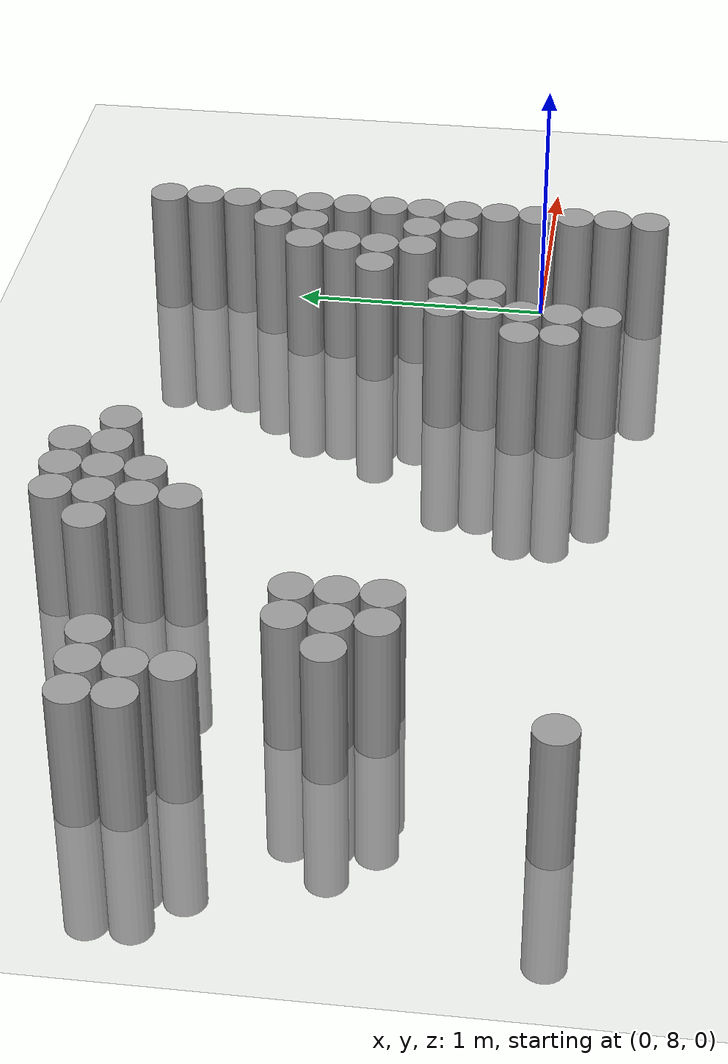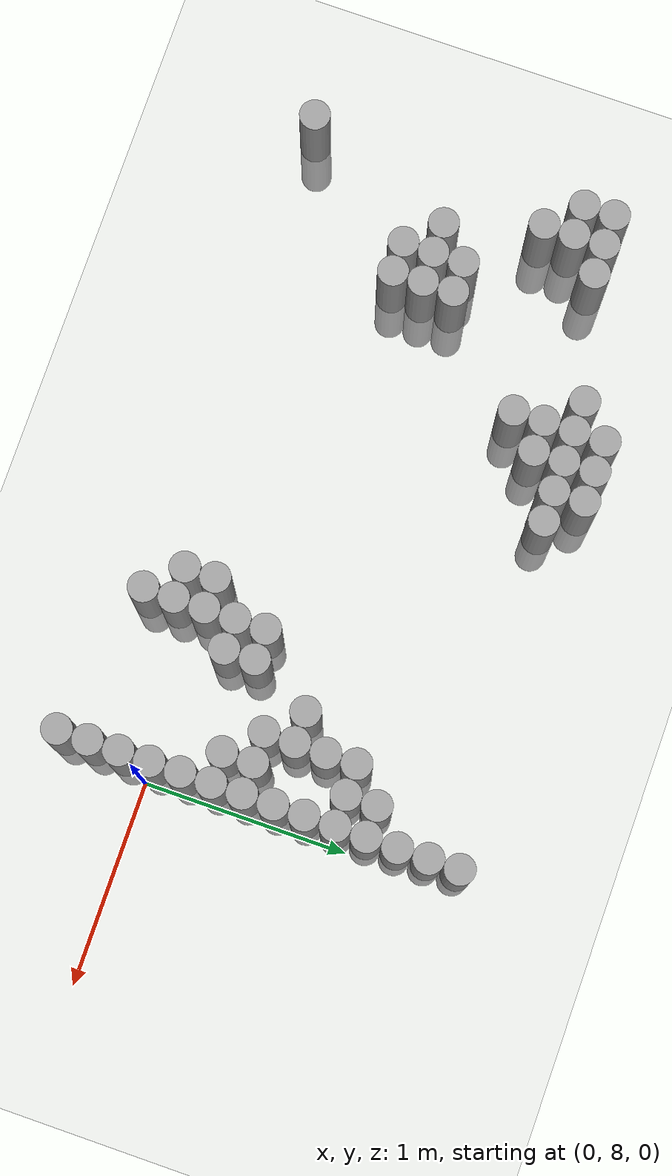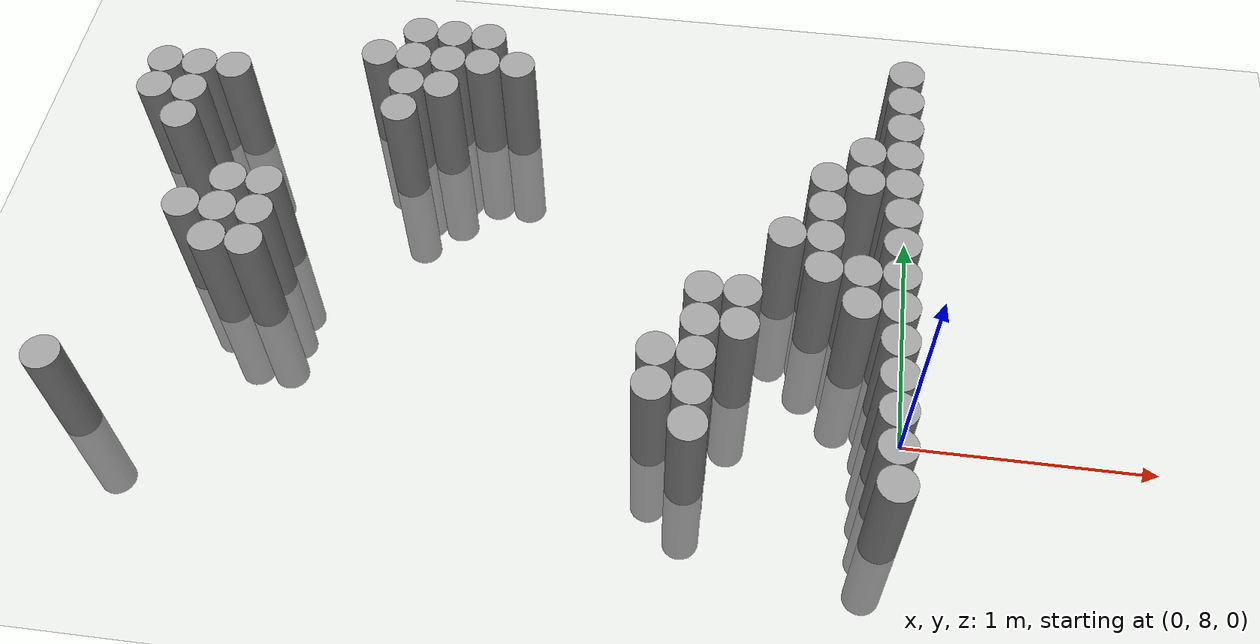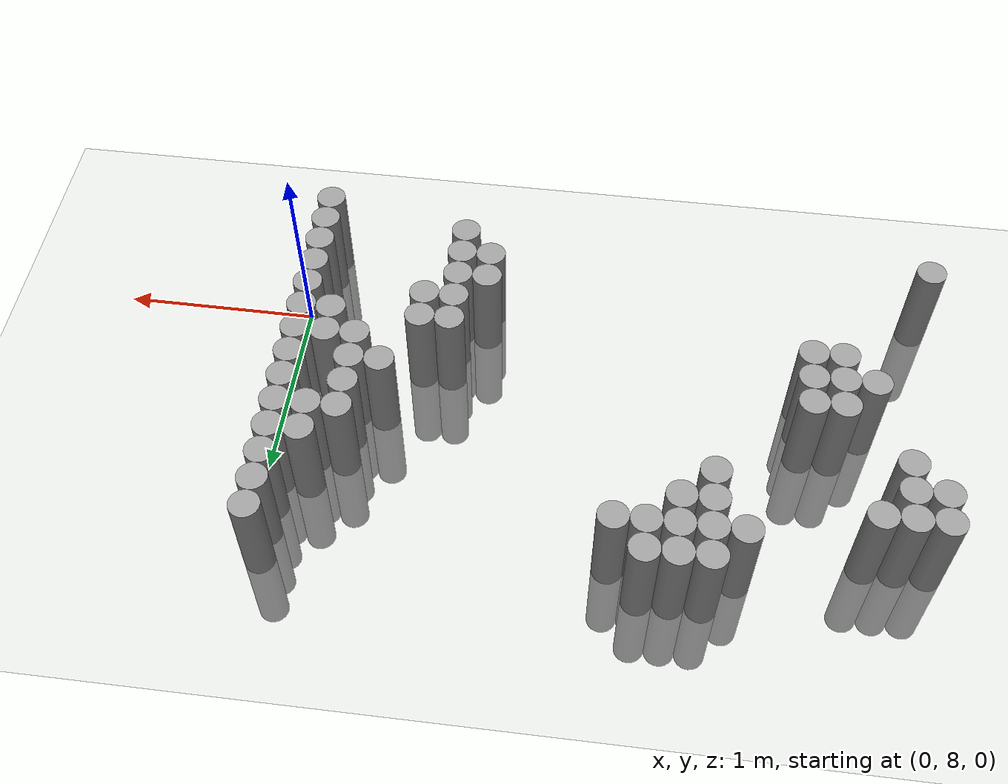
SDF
<sdf version="1.6">
 <world name="default">
  <model name="ground_plane">
   <static>1</static>
   <static>1</static>
   <link name="link">
    <collision name="collision">
     <geometry><plane><normal>0 0 1</normal><size>100 100</size></plane></geometry>
     <surface><friction><ode><mu>100</mu><mu2>50</mu2></ode></friction></surface>
    </collision>
    <visual name="visual">
     <cast_shadows>0</cast_shadows>
     <geometry><plane><normal>0 0 1</normal><size>100 100</size></plane></geometry>
     <material>
      <script><uri>file://media/materials/scripts/gazebo.material</uri><name>Gazebo/Grey</name></script>
     </material>
    </visual>
   </link>
  </model>
  <model name="unit_cylinder_165">
   <static>1</static>
   <pose>-3.225000 7.725000 0.000000 0.000000 0.000000 0.000000</pose>
   <link name="link">
    <inertial>
     <mass>1</mass>
     <inertia><ixx>0.145833</ixx><ixy>0</ixy><ixz>0</ixz><iyy>0.145833</iyy><iyz>0</iyz><izz>0.125</izz></inertia>
    </inertial>
    <collision name="collision">
     <geometry><cylinder><radius>0.075000</radius><length>1</length></cylinder></geometry>
    </collision>
    <visual name="visual">
     <geometry><cylinder><radius>0.075000</radius><length>1</length></cylinder></geometry>
     <material>
      <script><name>Gazebo/Grey</name><uri>file://media/materials/scripts/gazebo.material</uri></script>
     </material>
    </visual>
   </link>
  </model>
  <model name="unit_cylinder_166">
   <static>1</static>
   <pose>-3.225000 9.075000 0.000000 0.000000 0.000000 0.000000</pose>
   <link name="link">
    <inertial>
     <mass>1</mass>
     <inertia><ixx>0.145833</ixx><ixy>0</ixy><ixz>0</ixz><iyy>0.145833</iyy><iyz>0</iyz><izz>0.125</izz></inertia>
    </inertial>
    <collision name="collision">
     <geometry><cylinder><radius>0.075000</radius><length>1</length></cylinder></geometry>
    </collision>
    <visual name="visual">
     <geometry><cylinder><radius>0.075000</radius><length>1</length></cylinder></geometry>
     <material>
      <script><name>Gazebo/Grey</name><uri>file://media/materials/scripts/gazebo.material</uri></script>
     </material>
    </visual>
   </link>
  </model>
  <model name="unit_cylinder_167">
   <static>1</static>
   <pose>-3.225000 9.225000 0.000000 0.000000 0.000000 0.000000</pose>
   <link name="link">
    <inertial>
     <mass>1</mass>
     <inertia><ixx>0.145833</ixx><ixy>0</ixy><ixz>0</ixz><iyy>0.145833</iyy><iyz>0</iyz><izz>0.125</izz></inertia>
    </inertial>
    <collision name="collision">
     <geometry><cylinder><radius>0.075000</radius><length>1</length></cylinder></geometry>
    </collision>
    <visual name="visual">
     <geometry><cylinder><radius>0.075000</radius><length>1</length></cylinder></geometry>
     <material>
      <script><name>Gazebo/Grey</name><uri>file://media/materials/scripts/gazebo.material</uri></script>
     </material>
    </visual>
   </link>
  </model>
  <model name="unit_cylinder_170">
   <static>1</static>
   <pose>-3.075000 8.925000 0.000000 0.000000 0.000000 0.000000</pose>
   <link name="link">
    <inertial>
     <mass>1</mass>
     <inertia><ixx>0.145833</ixx><ixy>0</ixy><ixz>0</ixz><iyy>0.145833</iyy><iyz>0</iyz><izz>0.125</izz></inertia>
    </inertial>
    <collision name="collision">
     <geometry><cylinder><radius>0.075000</radius><length>1</length></cylinder></geometry>
    </collision>
    <visual name="visual">
     <geometry><cylinder><radius>0.075000</radius><length>1</length></cylinder></geometry>
     <material>
      <script><name>Gazebo/Grey</name><uri>file://media/materials/scripts/gazebo.material</uri></script>
     </material>
    </visual>
   </link>
  </model>
  <model name="unit_cylinder_171">
   <static>1</static>
   <pose>-3.075000 9.075000 0.000000 0.000000 0.000000 0.000000</pose>
   <link name="link">
    <inertial>
     <mass>1</mass>
     <inertia><ixx>0.145833</ixx><ixy>0</ixy><ixz>0</ixz><iyy>0.145833</iyy><iyz>0</iyz><izz>0.125</izz></inertia>
    </inertial>
    <collision name="collision">
     <geometry><cylinder><radius>0.075000</radius><length>1</length></cylinder></geometry>
    </collision>
    <visual name="visual">
     <geometry><cylinder><radius>0.075000</radius><length>1</length></cylinder></geometry>
     <material>
      <script><name>Gazebo/Grey</name><uri>file://media/materials/scripts/gazebo.material</uri></script>
     </material>
    </visual>
   </link>
  </model>
  <model name="unit_cylinder_172">
   <static>1</static>
   <pose>-3.075000 9.225000 0.000000 0.000000 0.000000 0.000000</pose>
   <link name="link">
    <inertial>
     <mass>1</mass>
     <inertia><ixx>0.145833</ixx><ixy>0</ixy><ixz>0</ixz><iyy>0.145833</iyy><iyz>0</iyz><izz>0.125</izz></inertia>
    </inertial>
    <collision name="collision">
     <geometry><cylinder><radius>0.075000</radius><length>1</length></cylinder></geometry>
    </collision>
    <visual name="visual">
     <geometry><cylinder><radius>0.075000</radius><length>1</length></cylinder></geometry>
     <material>
      <script><name>Gazebo/Grey</name><uri>file://media/materials/scripts/gazebo.material</uri></script>
     </material>
    </visual>
   </link>
  </model>
  <model name="unit_cylinder_176">
   <static>1</static>
   <pose>-2.925000 8.475000 0.000000 0.000000 0.000000 0.000000</pose>
   <link name="link">
    <inertial>
     <mass>1</mass>
     <inertia><ixx>0.145833</ixx><ixy>0</ixy><ixz>0</ixz><iyy>0.145833</iyy><iyz>0</iyz><izz>0.125</izz></inertia>
    </inertial>
    <collision name="collision">
     <geometry><cylinder><radius>0.075000</radius><length>1</length></cylinder></geometry>
    </collision>
    <visual name="visual">
     <geometry><cylinder><radius>0.075000</radius><length>1</length></cylinder></geometry>
     <material>
      <script><name>Gazebo/Grey</name><uri>file://media/materials/scripts/gazebo.material</uri></script>
     </material>
    </visual>
   </link>
  </model>
  <model name="unit_cylinder_177">
   <static>1</static>
   <pose>-2.925000 9.225000 0.000000 0.000000 0.000000 0.000000</pose>
   <link name="link">
    <inertial>
     <mass>1</mass>
     <inertia><ixx>0.145833</ixx><ixy>0</ixy><ixz>0</ixz><iyy>0.145833</iyy><iyz>0</iyz><izz>0.125</izz></inertia>
    </inertial>
    <collision name="collision">
     <geometry><cylinder><radius>0.075000</radius><length>1</length></cylinder></geometry>
    </collision>
    <visual name="visual">
     <geometry><cylinder><radius>0.075000</radius><length>1</length></cylinder></geometry>
     <material>
      <script><name>Gazebo/Grey</name><uri>file://media/materials/scripts/gazebo.material</uri></script>
     </material>
    </visual>
   </link>
  </model>
  <model name="unit_cylinder_183">
   <static>1</static>
   <pose>-2.775000 8.325000 0.000000 0.000000 0.000000 0.000000</pose>
   <link name="link">
    <inertial>
     <mass>1</mass>
     <inertia><ixx>0.145833</ixx><ixy>0</ixy><ixz>0</ixz><iyy>0.145833</iyy><iyz>0</iyz><izz>0.125</izz></inertia>
    </inertial>
    <collision name="collision">
     <geometry><cylinder><radius>0.075000</radius><length>1</length></cylinder></geometry>
    </collision>
    <visual name="visual">
     <geometry><cylinder><radius>0.075000</radius><length>1</length></cylinder></geometry>
     <material>
      <script><name>Gazebo/Grey</name><uri>file://media/materials/scripts/gazebo.material</uri></script>
     </material>
    </visual>
   </link>
  </model>
  <model name="unit_cylinder_184">
   <static>1</static>
   <pose>-2.775000 8.475000 0.000000 0.000000 0.000000 0.000000</pose>
   <link name="link">
    <inertial>
     <mass>1</mass>
     <inertia><ixx>0.145833</ixx><ixy>0</ixy><ixz>0</ixz><iyy>0.145833</iyy><iyz>0</iyz><izz>0.125</izz></inertia>
    </inertial>
    <collision name="collision">
     <geometry><cylinder><radius>0.075000</radius><length>1</length></cylinder></geometry>
    </collision>
    <visual name="visual">
     <geometry><cylinder><radius>0.075000</radius><length>1</length></cylinder></geometry>
     <material>
      <script><name>Gazebo/Grey</name><uri>file://media/materials/scripts/gazebo.material</uri></script>
     </material>
    </visual>
   </link>
  </model>
  <model name="unit_cylinder_185">
   <static>1</static>
   <pose>-2.775000 8.625000 0.000000 0.000000 0.000000 0.000000</pose>
   <link name="link">
    <inertial>
     <mass>1</mass>
     <inertia><ixx>0.145833</ixx><ixy>0</ixy><ixz>0</ixz><iyy>0.145833</iyy><iyz>0</iyz><izz>0.125</izz></inertia>
    </inertial>
    <collision name="collision">
     <geometry><cylinder><radius>0.075000</radius><length>1</length></cylinder></geometry>
    </collision>
    <visual name="visual">
     <geometry><cylinder><radius>0.075000</radius><length>1</length></cylinder></geometry>
     <material>
      <script><name>Gazebo/Grey</name><uri>file://media/materials/scripts/gazebo.material</uri></script>
     </material>
    </visual>
   </link>
  </model>
  <model name="unit_cylinder_191">
   <static>1</static>
   <pose>-2.625000 8.325000 0.000000 0.000000 0.000000 0.000000</pose>
   <link name="link">
    <inertial>
     <mass>1</mass>
     <inertia><ixx>0.145833</ixx><ixy>0</ixy><ixz>0</ixz><iyy>0.145833</iyy><iyz>0</iyz><izz>0.125</izz></inertia>
    </inertial>
    <collision name="collision">
     <geometry><cylinder><radius>0.075000</radius><length>1</length></cylinder></geometry>
    </collision>
    <visual name="visual">
     <geometry><cylinder><radius>0.075000</radius><length>1</length></cylinder></geometry>
     <material>
      <script><name>Gazebo/Grey</name><uri>file://media/materials/scripts/gazebo.material</uri></script>
     </material>
    </visual>
   </link>
  </model>
  <model name="unit_cylinder_192">
   <static>1</static>
   <pose>-2.625000 8.475000 0.000000 0.000000 0.000000 0.000000</pose>
   <link name="link">
    <inertial>
     <mass>1</mass>
     <inertia><ixx>0.145833</ixx><ixy>0</ixy><ixz>0</ixz><iyy>0.145833</iyy><iyz>0</iyz><izz>0.125</izz></inertia>
    </inertial>
    <collision name="collision">
     <geometry><cylinder><radius>0.075000</radius><length>1</length></cylinder></geometry>
    </collision>
    <visual name="visual">
     <geometry><cylinder><radius>0.075000</radius><length>1</length></cylinder></geometry>
     <material>
      <script><name>Gazebo/Grey</name><uri>file://media/materials/scripts/gazebo.material</uri></script>
     </material>
    </visual>
   </link>
  </model>
  <model name="unit_cylinder_193">
   <static>1</static>
   <pose>-2.625000 8.625000 0.000000 0.000000 0.000000 0.000000</pose>
   <link name="link">
    <inertial>
     <mass>1</mass>
     <inertia><ixx>0.145833</ixx><ixy>0</ixy><ixz>0</ixz><iyy>0.145833</iyy><iyz>0</iyz><izz>0.125</izz></inertia>
    </inertial>
    <collision name="collision">
     <geometry><cylinder><radius>0.075000</radius><length>1</length></cylinder></geometry>
    </collision>
    <visual name="visual">
     <geometry><cylinder><radius>0.075000</radius><length>1</length></cylinder></geometry>
     <material>
      <script><name>Gazebo/Grey</name><uri>file://media/materials/scripts/gazebo.material</uri></script>
     </material>
    </visual>
   </link>
  </model>
  <model name="unit_cylinder_197">
   <static>1</static>
   <pose>-2.325000 9.375000 0.000000 0.000000 0.000000 0.000000</pose>
   <link name="link">
    <inertial>
     <mass>1</mass>
     <inertia><ixx>0.145833</ixx><ixy>0</ixy><ixz>0</ixz><iyy>0.145833</iyy><iyz>0</iyz><izz>0.125</izz></inertia>
    </inertial>
    <collision name="collision">
     <geometry><cylinder><radius>0.075000</radius><length>1</length></cylinder></geometry>
    </collision>
    <visual name="visual">
     <geometry><cylinder><radius>0.075000</radius><length>1</length></cylinder></geometry>
     <material>
      <script><name>Gazebo/Grey</name><uri>file://media/materials/scripts/gazebo.material</uri></script>
     </material>
    </visual>
   </link>
  </model>
  <model name="unit_cylinder_200">
   <static>1</static>
   <pose>-2.175000 9.075000 0.000000 0.000000 0.000000 0.000000</pose>
   <link name="link">
    <inertial>
     <mass>1</mass>
     <inertia><ixx>0.145833</ixx><ixy>0</ixy><ixz>0</ixz><iyy>0.145833</iyy><iyz>0</iyz><izz>0.125</izz></inertia>
    </inertial>
    <collision name="collision">
     <geometry><cylinder><radius>0.075000</radius><length>1</length></cylinder></geometry>
    </collision>
    <visual name="visual">
     <geometry><cylinder><radius>0.075000</radius><length>1</length></cylinder></geometry>
     <material>
      <script><name>Gazebo/Grey</name><uri>file://media/materials/scripts/gazebo.material</uri></script>
     </material>
    </visual>
   </link>
  </model>
  <model name="unit_cylinder_201">
   <static>1</static>
   <pose>-2.175000 9.225000 0.000000 0.000000 0.000000 0.000000</pose>
   <link name="link">
    <inertial>
     <mass>1</mass>
     <inertia><ixx>0.145833</ixx><ixy>0</ixy><ixz>0</ixz><iyy>0.145833</iyy><iyz>0</iyz><izz>0.125</izz></inertia>
    </inertial>
    <collision name="collision">
     <geometry><cylinder><radius>0.075000</radius><length>1</length></cylinder></geometry>
    </collision>
    <visual name="visual">
     <geometry><cylinder><radius>0.075000</radius><length>1</length></cylinder></geometry>
     <material>
      <script><name>Gazebo/Grey</name><uri>file://media/materials/scripts/gazebo.material</uri></script>
     </material>
    </visual>
   </link>
  </model>
  <model name="unit_cylinder_202">
   <static>1</static>
   <pose>-2.175000 9.375000 0.000000 0.000000 0.000000 0.000000</pose>
   <link name="link">
    <inertial>
     <mass>1</mass>
     <inertia><ixx>0.145833</ixx><ixy>0</ixy><ixz>0</ixz><iyy>0.145833</iyy><iyz>0</iyz><izz>0.125</izz></inertia>
    </inertial>
    <collision name="collision">
     <geometry><cylinder><radius>0.075000</radius><length>1</length></cylinder></geometry>
    </collision>
    <visual name="visual">
     <geometry><cylinder><radius>0.075000</radius><length>1</length></cylinder></geometry>
     <material>
      <script><name>Gazebo/Grey</name><uri>file://media/materials/scripts/gazebo.material</uri></script>
     </material>
    </visual>
   </link>
  </model>
  <model name="unit_cylinder_203">
   <static>1</static>
   <pose>-2.175000 9.525000 0.000000 0.000000 0.000000 0.000000</pose>
   <link name="link">
    <inertial>
     <mass>1</mass>
     <inertia><ixx>0.145833</ixx><ixy>0</ixy><ixz>0</ixz><iyy>0.145833</iyy><iyz>0</iyz><izz>0.125</izz></inertia>
    </inertial>
    <collision name="collision">
     <geometry><cylinder><radius>0.075000</radius><length>1</length></cylinder></geometry>
    </collision>
    <visual name="visual">
     <geometry><cylinder><radius>0.075000</radius><length>1</length></cylinder></geometry>
     <material>
      <script><name>Gazebo/Grey</name><uri>file://media/materials/scripts/gazebo.material</uri></script>
     </material>
    </visual>
   </link>
  </model>
  <model name="unit_cylinder_205">
   <static>1</static>
   <pose>-2.025000 9.225000 0.000000 0.000000 0.000000 0.000000</pose>
   <link name="link">
    <inertial>
     <mass>1</mass>
     <inertia><ixx>0.145833</ixx><ixy>0</ixy><ixz>0</ixz><iyy>0.145833</iyy><iyz>0</iyz><izz>0.125</izz></inertia>
    </inertial>
    <collision name="collision">
     <geometry><cylinder><radius>0.075000</radius><length>1</length></cylinder></geometry>
    </collision>
    <visual name="visual">
     <geometry><cylinder><radius>0.075000</radius><length>1</length></cylinder></geometry>
     <material>
      <script><name>Gazebo/Grey</name><uri>file://media/materials/scripts/gazebo.material</uri></script>
     </material>
    </visual>
   </link>
  </model>
  <model name="unit_cylinder_206">
   <static>1</static>
   <pose>-2.025000 9.375000 0.000000 0.000000 0.000000 0.000000</pose>
   <link name="link">
    <inertial>
     <mass>1</mass>
     <inertia><ixx>0.145833</ixx><ixy>0</ixy><ixz>0</ixz><iyy>0.145833</iyy><iyz>0</iyz><izz>0.125</izz></inertia>
    </inertial>
    <collision name="collision">
     <geometry><cylinder><radius>0.075000</radius><length>1</length></cylinder></geometry>
    </collision>
    <visual name="visual">
     <geometry><cylinder><radius>0.075000</radius><length>1</length></cylinder></geometry>
     <material>
      <script><name>Gazebo/Grey</name><uri>file://media/materials/scripts/gazebo.material</uri></script>
     </material>
    </visual>
   </link>
  </model>
  <model name="unit_cylinder_207">
   <static>1</static>
   <pose>-2.025000 9.525000 0.000000 0.000000 0.000000 0.000000</pose>
   <link name="link">
    <inertial>
     <mass>1</mass>
     <inertia><ixx>0.145833</ixx><ixy>0</ixy><ixz>0</ixz><iyy>0.145833</iyy><iyz>0</iyz><izz>0.125</izz></inertia>
    </inertial>
    <collision name="collision">
     <geometry><cylinder><radius>0.075000</radius><length>1</length></cylinder></geometry>
    </collision>
    <visual name="visual">
     <geometry><cylinder><radius>0.075000</radius><length>1</length></cylinder></geometry>
     <material>
      <script><name>Gazebo/Grey</name><uri>file://media/materials/scripts/gazebo.material</uri></script>
     </material>
    </visual>
   </link>
  </model>
  <model name="unit_cylinder_208">
   <static>1</static>
   <pose>-1.875000 9.375000 0.000000 0.000000 0.000000 0.000000</pose>
   <link name="link">
    <inertial>
     <mass>1</mass>
     <inertia><ixx>0.145833</ixx><ixy>0</ixy><ixz>0</ixz><iyy>0.145833</iyy><iyz>0</iyz><izz>0.125</izz></inertia>
    </inertial>
    <collision name="collision">
     <geometry><cylinder><radius>0.075000</radius><length>1</length></cylinder></geometry>
    </collision>
    <visual name="visual">
     <geometry><cylinder><radius>0.075000</radius><length>1</length></cylinder></geometry>
     <material>
      <script><name>Gazebo/Grey</name><uri>file://media/materials/scripts/gazebo.material</uri></script>
     </material>
    </visual>
   </link>
  </model>
  <model name="unit_cylinder_209">
   <static>1</static>
   <pose>-1.875000 9.525000 0.000000 0.000000 0.000000 0.000000</pose>
   <link name="link">
    <inertial>
     <mass>1</mass>
     <inertia><ixx>0.145833</ixx><ixy>0</ixy><ixz>0</ixz><iyy>0.145833</iyy><iyz>0</iyz><izz>0.125</izz></inertia>
    </inertial>
    <collision name="collision">
     <geometry><cylinder><radius>0.075000</radius><length>1</length></cylinder></geometry>
    </collision>
    <visual name="visual">
     <geometry><cylinder><radius>0.075000</radius><length>1</length></cylinder></geometry>
     <material>
      <script><name>Gazebo/Grey</name><uri>file://media/materials/scripts/gazebo.material</uri></script>
     </material>
    </visual>
   </link>
  </model>
  <model name="unit_cylinder_210">
   <static>1</static>
   <pose>-1.725000 9.375000 0.000000 0.000000 0.000000 0.000000</pose>
   <link name="link">
    <inertial>
     <mass>1</mass>
     <inertia><ixx>0.145833</ixx><ixy>0</ixy><ixz>0</ixz><iyy>0.145833</iyy><iyz>0</iyz><izz>0.125</izz></inertia>
    </inertial>
    <collision name="collision">
     <geometry><cylinder><radius>0.075000</radius><length>1</length></cylinder></geometry>
    </collision>
    <visual name="visual">
     <geometry><cylinder><radius>0.075000</radius><length>1</length></cylinder></geometry>
     <material>
      <script><name>Gazebo/Grey</name><uri>file://media/materials/scripts/gazebo.material</uri></script>
     </material>
    </visual>
   </link>
  </model>
  <model name="unit_cylinder_223">
   <static>1</static>
   <pose>-0.975000 7.875000 0.000000 0.000000 0.000000 0.000000</pose>
   <link name="link">
    <inertial>
     <mass>1</mass>
     <inertia><ixx>0.145833</ixx><ixy>0</ixy><ixz>0</ixz><iyy>0.145833</iyy><iyz>0</iyz><izz>0.125</izz></inertia>
    </inertial>
    <collision name="collision">
     <geometry><cylinder><radius>0.075000</radius><length>1</length></cylinder></geometry>
    </collision>
    <visual name="visual">
     <geometry><cylinder><radius>0.075000</radius><length>1</length></cylinder></geometry>
     <material>
      <script><name>Gazebo/Grey</name><uri>file://media/materials/scripts/gazebo.material</uri></script>
     </material>
    </visual>
   </link>
  </model>
  <model name="unit_cylinder_224">
   <static>1</static>
   <pose>-0.975000 8.025000 0.000000 0.000000 0.000000 0.000000</pose>
   <link name="link">
    <inertial>
     <mass>1</mass>
     <inertia><ixx>0.145833</ixx><ixy>0</ixy><ixz>0</ixz><iyy>0.145833</iyy><iyz>0</iyz><izz>0.125</izz></inertia>
    </inertial>
    <collision name="collision">
     <geometry><cylinder><radius>0.075000</radius><length>1</length></cylinder></geometry>
    </collision>
    <visual name="visual">
     <geometry><cylinder><radius>0.075000</radius><length>1</length></cylinder></geometry>
     <material>
      <script><name>Gazebo/Grey</name><uri>file://media/materials/scripts/gazebo.material</uri></script>
     </material>
    </visual>
   </link>
  </model>
  <model name="unit_cylinder_228">
   <static>1</static>
   <pose>-0.825000 7.725000 0.000000 0.000000 0.000000 0.000000</pose>
   <link name="link">
    <inertial>
     <mass>1</mass>
     <inertia><ixx>0.145833</ixx><ixy>0</ixy><ixz>0</ixz><iyy>0.145833</iyy><iyz>0</iyz><izz>0.125</izz></inertia>
    </inertial>
    <collision name="collision">
     <geometry><cylinder><radius>0.075000</radius><length>1</length></cylinder></geometry>
    </collision>
    <visual name="visual">
     <geometry><cylinder><radius>0.075000</radius><length>1</length></cylinder></geometry>
     <material>
      <script><name>Gazebo/Grey</name><uri>file://media/materials/scripts/gazebo.material</uri></script>
     </material>
    </visual>
   </link>
  </model>
  <model name="unit_cylinder_229">
   <static>1</static>
   <pose>-0.825000 7.875000 0.000000 0.000000 0.000000 0.000000</pose>
   <link name="link">
    <inertial>
     <mass>1</mass>
     <inertia><ixx>0.145833</ixx><ixy>0</ixy><ixz>0</ixz><iyy>0.145833</iyy><iyz>0</iyz><izz>0.125</izz></inertia>
    </inertial>
    <collision name="collision">
     <geometry><cylinder><radius>0.075000</radius><length>1</length></cylinder></geometry>
    </collision>
    <visual name="visual">
     <geometry><cylinder><radius>0.075000</radius><length>1</length></cylinder></geometry>
     <material>
      <script><name>Gazebo/Grey</name><uri>file://media/materials/scripts/gazebo.material</uri></script>
     </material>
    </visual>
   </link>
  </model>
  <model name="unit_cylinder_230">
   <static>1</static>
   <pose>-0.825000 8.025000 0.000000 0.000000 0.000000 0.000000</pose>
   <link name="link">
    <inertial>
     <mass>1</mass>
     <inertia><ixx>0.145833</ixx><ixy>0</ixy><ixz>0</ixz><iyy>0.145833</iyy><iyz>0</iyz><izz>0.125</izz></inertia>
    </inertial>
    <collision name="collision">
     <geometry><cylinder><radius>0.075000</radius><length>1</length></cylinder></geometry>
    </collision>
    <visual name="visual">
     <geometry><cylinder><radius>0.075000</radius><length>1</length></cylinder></geometry>
     <material>
      <script><name>Gazebo/Grey</name><uri>file://media/materials/scripts/gazebo.material</uri></script>
     </material>
    </visual>
   </link>
  </model>
  <model name="unit_cylinder_231">
   <static>1</static>
   <pose>-0.825000 8.175000 0.000000 0.000000 0.000000 0.000000</pose>
   <link name="link">
    <inertial>
     <mass>1</mass>
     <inertia><ixx>0.145833</ixx><ixy>0</ixy><ixz>0</ixz><iyy>0.145833</iyy><iyz>0</iyz><izz>0.125</izz></inertia>
    </inertial>
    <collision name="collision">
     <geometry><cylinder><radius>0.075000</radius><length>1</length></cylinder></geometry>
    </collision>
    <visual name="visual">
     <geometry><cylinder><radius>0.075000</radius><length>1</length></cylinder></geometry>
     <material>
      <script><name>Gazebo/Grey</name><uri>file://media/materials/scripts/gazebo.material</uri></script>
     </material>
    </visual>
   </link>
  </model>
  <model name="unit_cylinder_232">
   <static>1</static>
   <pose>-0.825000 8.325000 0.000000 0.000000 0.000000 0.000000</pose>
   <link name="link">
    <inertial>
     <mass>1</mass>
     <inertia><ixx>0.145833</ixx><ixy>0</ixy><ixz>0</ixz><iyy>0.145833</iyy><iyz>0</iyz><izz>0.125</izz></inertia>
    </inertial>
    <collision name="collision">
     <geometry><cylinder><radius>0.075000</radius><length>1</length></cylinder></geometry>
    </collision>
    <visual name="visual">
     <geometry><cylinder><radius>0.075000</radius><length>1</length></cylinder></geometry>
     <material>
      <script><name>Gazebo/Grey</name><uri>file://media/materials/scripts/gazebo.material</uri></script>
     </material>
    </visual>
   </link>
  </model>
  <model name="unit_cylinder_238">
   <static>1</static>
   <pose>-0.675000 8.175000 0.000000 0.000000 0.000000 0.000000</pose>
   <link name="link">
    <inertial>
     <mass>1</mass>
     <inertia><ixx>0.145833</ixx><ixy>0</ixy><ixz>0</ixz><iyy>0.145833</iyy><iyz>0</iyz><izz>0.125</izz></inertia>
    </inertial>
    <collision name="collision">
     <geometry><cylinder><radius>0.075000</radius><length>1</length></cylinder></geometry>
    </collision>
    <visual name="visual">
     <geometry><cylinder><radius>0.075000</radius><length>1</length></cylinder></geometry>
     <material>
      <script><name>Gazebo/Grey</name><uri>file://media/materials/scripts/gazebo.material</uri></script>
     </material>
    </visual>
   </link>
  </model>
  <model name="unit_cylinder_239">
   <static>1</static>
   <pose>-0.675000 8.325000 0.000000 0.000000 0.000000 0.000000</pose>
   <link name="link">
    <inertial>
     <mass>1</mass>
     <inertia><ixx>0.145833</ixx><ixy>0</ixy><ixz>0</ixz><iyy>0.145833</iyy><iyz>0</iyz><izz>0.125</izz></inertia>
    </inertial>
    <collision name="collision">
     <geometry><cylinder><radius>0.075000</radius><length>1</length></cylinder></geometry>
    </collision>
    <visual name="visual">
     <geometry><cylinder><radius>0.075000</radius><length>1</length></cylinder></geometry>
     <material>
      <script><name>Gazebo/Grey</name><uri>file://media/materials/scripts/gazebo.material</uri></script>
     </material>
    </visual>
   </link>
  </model>
  <model name="unit_cylinder_241">
   <static>1</static>
   <pose>-0.525000 8.625000 0.000000 0.000000 0.000000 0.000000</pose>
   <link name="link">
    <inertial>
     <mass>1</mass>
     <inertia><ixx>0.145833</ixx><ixy>0</ixy><ixz>0</ixz><iyy>0.145833</iyy><iyz>0</iyz><izz>0.125</izz></inertia>
    </inertial>
    <collision name="collision">
     <geometry><cylinder><radius>0.075000</radius><length>1</length></cylinder></geometry>
    </collision>
    <visual name="visual">
     <geometry><cylinder><radius>0.075000</radius><length>1</length></cylinder></geometry>
     <material>
      <script><name>Gazebo/Grey</name><uri>file://media/materials/scripts/gazebo.material</uri></script>
     </material>
    </visual>
   </link>
  </model>
  <model name="unit_cylinder_243">
   <static>1</static>
   <pose>-0.375000 8.475000 0.000000 0.000000 0.000000 0.000000</pose>
   <link name="link">
    <inertial>
     <mass>1</mass>
     <inertia><ixx>0.145833</ixx><ixy>0</ixy><ixz>0</ixz><iyy>0.145833</iyy><iyz>0</iyz><izz>0.125</izz></inertia>
    </inertial>
    <collision name="collision">
     <geometry><cylinder><radius>0.075000</radius><length>1</length></cylinder></geometry>
    </collision>
    <visual name="visual">
     <geometry><cylinder><radius>0.075000</radius><length>1</length></cylinder></geometry>
     <material>
      <script><name>Gazebo/Grey</name><uri>file://media/materials/scripts/gazebo.material</uri></script>
     </material>
    </visual>
   </link>
  </model>
  <model name="unit_cylinder_244">
   <static>1</static>
   <pose>-0.375000 8.625000 0.000000 0.000000 0.000000 0.000000</pose>
   <link name="link">
    <inertial>
     <mass>1</mass>
     <inertia><ixx>0.145833</ixx><ixy>0</ixy><ixz>0</ixz><iyy>0.145833</iyy><iyz>0</iyz><izz>0.125</izz></inertia>
    </inertial>
    <collision name="collision">
     <geometry><cylinder><radius>0.075000</radius><length>1</length></cylinder></geometry>
    </collision>
    <visual name="visual">
     <geometry><cylinder><radius>0.075000</radius><length>1</length></cylinder></geometry>
     <material>
      <script><name>Gazebo/Grey</name><uri>file://media/materials/scripts/gazebo.material</uri></script>
     </material>
    </visual>
   </link>
  </model>
  <model name="unit_cylinder_245">
   <static>1</static>
   <pose>-0.375000 8.775000 0.000000 0.000000 0.000000 0.000000</pose>
   <link name="link">
    <inertial>
     <mass>1</mass>
     <inertia><ixx>0.145833</ixx><ixy>0</ixy><ixz>0</ixz><iyy>0.145833</iyy><iyz>0</iyz><izz>0.125</izz></inertia>
    </inertial>
    <collision name="collision">
     <geometry><cylinder><radius>0.075000</radius><length>1</length></cylinder></geometry>
    </collision>
    <visual name="visual">
     <geometry><cylinder><radius>0.075000</radius><length>1</length></cylinder></geometry>
     <material>
      <script><name>Gazebo/Grey</name><uri>file://media/materials/scripts/gazebo.material</uri></script>
     </material>
    </visual>
   </link>
  </model>
  <model name="unit_cylinder_246">
   <static>1</static>
   <pose>-0.375000 8.925000 0.000000 0.000000 0.000000 0.000000</pose>
   <link name="link">
    <inertial>
     <mass>1</mass>
     <inertia><ixx>0.145833</ixx><ixy>0</ixy><ixz>0</ixz><iyy>0.145833</iyy><iyz>0</iyz><izz>0.125</izz></inertia>
    </inertial>
    <collision name="collision">
     <geometry><cylinder><radius>0.075000</radius><length>1</length></cylinder></geometry>
    </collision>
    <visual name="visual">
     <geometry><cylinder><radius>0.075000</radius><length>1</length></cylinder></geometry>
     <material>
      <script><name>Gazebo/Grey</name><uri>file://media/materials/scripts/gazebo.material</uri></script>
     </material>
    </visual>
   </link>
  </model>
  <model name="unit_cylinder_251">
   <static>1</static>
   <pose>-0.225000 8.325000 0.000000 0.000000 0.000000 0.000000</pose>
   <link name="link">
    <inertial>
     <mass>1</mass>
     <inertia><ixx>0.145833</ixx><ixy>0</ixy><ixz>0</ixz><iyy>0.145833</iyy><iyz>0</iyz><izz>0.125</izz></inertia>
    </inertial>
    <collision name="collision">
     <geometry><cylinder><radius>0.075000</radius><length>1</length></cylinder></geometry>
    </collision>
    <visual name="visual">
     <geometry><cylinder><radius>0.075000</radius><length>1</length></cylinder></geometry>
     <material>
      <script><name>Gazebo/Grey</name><uri>file://media/materials/scripts/gazebo.material</uri></script>
     </material>
    </visual>
   </link>
  </model>
  <model name="unit_cylinder_252">
   <static>1</static>
   <pose>-0.225000 8.475000 0.000000 0.000000 0.000000 0.000000</pose>
   <link name="link">
    <inertial>
     <mass>1</mass>
     <inertia><ixx>0.145833</ixx><ixy>0</ixy><ixz>0</ixz><iyy>0.145833</iyy><iyz>0</iyz><izz>0.125</izz></inertia>
    </inertial>
    <collision name="collision">
     <geometry><cylinder><radius>0.075000</radius><length>1</length></cylinder></geometry>
    </collision>
    <visual name="visual">
     <geometry><cylinder><radius>0.075000</radius><length>1</length></cylinder></geometry>
     <material>
      <script><name>Gazebo/Grey</name><uri>file://media/materials/scripts/gazebo.material</uri></script>
     </material>
    </visual>
   </link>
  </model>
  <model name="unit_cylinder_253">
   <static>1</static>
   <pose>-0.225000 8.925000 0.000000 0.000000 0.000000 0.000000</pose>
   <link name="link">
    <inertial>
     <mass>1</mass>
     <inertia><ixx>0.145833</ixx><ixy>0</ixy><ixz>0</ixz><iyy>0.145833</iyy><iyz>0</iyz><izz>0.125</izz></inertia>
    </inertial>
    <collision name="collision">
     <geometry><cylinder><radius>0.075000</radius><length>1</length></cylinder></geometry>
    </collision>
    <visual name="visual">
     <geometry><cylinder><radius>0.075000</radius><length>1</length></cylinder></geometry>
     <material>
      <script><name>Gazebo/Grey</name><uri>file://media/materials/scripts/gazebo.material</uri></script>
     </material>
    </visual>
   </link>
  </model>
  <model name="unit_cylinder_254">
   <static>1</static>
   <pose>-0.225000 9.075000 0.000000 0.000000 0.000000 0.000000</pose>
   <link name="link">
    <inertial>
     <mass>1</mass>
     <inertia><ixx>0.145833</ixx><ixy>0</ixy><ixz>0</ixz><iyy>0.145833</iyy><iyz>0</iyz><izz>0.125</izz></inertia>
    </inertial>
    <collision name="collision">
     <geometry><cylinder><radius>0.075000</radius><length>1</length></cylinder></geometry>
    </collision>
    <visual name="visual">
     <geometry><cylinder><radius>0.075000</radius><length>1</length></cylinder></geometry>
     <material>
      <script><name>Gazebo/Grey</name><uri>file://media/materials/scripts/gazebo.material</uri></script>
     </material>
    </visual>
   </link>
  </model>
  <model name="unit_cylinder_271">
   <static>1</static>
   <pose>-0.075000 7.575000 0.000000 0.000000 0.000000 0.000000</pose>
   <link name="link">
    <inertial>
     <mass>1</mass>
     <inertia><ixx>0.145833</ixx><ixy>0</ixy><ixz>0</ixz><iyy>0.145833</iyy><iyz>0</iyz><izz>0.125</izz></inertia>
    </inertial>
    <collision name="collision">
     <geometry><cylinder><radius>0.075000</radius><length>1</length></cylinder></geometry>
    </collision>
    <visual name="visual">
     <geometry><cylinder><radius>0.075000</radius><length>1</length></cylinder></geometry>
     <material>
      <script><name>Gazebo/Grey</name><uri>file://media/materials/scripts/gazebo.material</uri></script>
     </material>
    </visual>
   </link>
  </model>
  <model name="unit_cylinder_272">
   <static>1</static>
   <pose>-0.075000 7.725000 0.000000 0.000000 0.000000 0.000000</pose>
   <link name="link">
    <inertial>
     <mass>1</mass>
     <inertia><ixx>0.145833</ixx><ixy>0</ixy><ixz>0</ixz><iyy>0.145833</iyy><iyz>0</iyz><izz>0.125</izz></inertia>
    </inertial>
    <collision name="collision">
     <geometry><cylinder><radius>0.075000</radius><length>1</length></cylinder></geometry>
    </collision>
    <visual name="visual">
     <geometry><cylinder><radius>0.075000</radius><length>1</length></cylinder></geometry>
     <material>
      <script><name>Gazebo/Grey</name><uri>file://media/materials/scripts/gazebo.material</uri></script>
     </material>
    </visual>
   </link>
  </model>
  <model name="unit_cylinder_273">
   <static>1</static>
   <pose>-0.075000 7.875000 0.000000 0.000000 0.000000 0.000000</pose>
   <link name="link">
    <inertial>
     <mass>1</mass>
     <inertia><ixx>0.145833</ixx><ixy>0</ixy><ixz>0</ixz><iyy>0.145833</iyy><iyz>0</iyz><izz>0.125</izz></inertia>
    </inertial>
    <collision name="collision">
     <geometry><cylinder><radius>0.075000</radius><length>1</length></cylinder></geometry>
    </collision>
    <visual name="visual">
     <geometry><cylinder><radius>0.075000</radius><length>1</length></cylinder></geometry>
     <material>
      <script><name>Gazebo/Grey</name><uri>file://media/materials/scripts/gazebo.material</uri></script>
     </material>
    </visual>
   </link>
  </model>
  <model name="unit_cylinder_274">
   <static>1</static>
   <pose>-0.075000 8.025000 0.000000 0.000000 0.000000 0.000000</pose>
   <link name="link">
    <inertial>
     <mass>1</mass>
     <inertia><ixx>0.145833</ixx><ixy>0</ixy><ixz>0</ixz><iyy>0.145833</iyy><iyz>0</iyz><izz>0.125</izz></inertia>
    </inertial>
    <collision name="collision">
     <geometry><cylinder><radius>0.075000</radius><length>1</length></cylinder></geometry>
    </collision>
    <visual name="visual">
     <geometry><cylinder><radius>0.075000</radius><length>1</length></cylinder></geometry>
     <material>
      <script><name>Gazebo/Grey</name><uri>file://media/materials/scripts/gazebo.material</uri></script>
     </material>
    </visual>
   </link>
  </model>
  <model name="unit_cylinder_275">
   <static>1</static>
   <pose>-0.075000 8.175000 0.000000 0.000000 0.000000 0.000000</pose>
   <link name="link">
    <inertial>
     <mass>1</mass>
     <inertia><ixx>0.145833</ixx><ixy>0</ixy><ixz>0</ixz><iyy>0.145833</iyy><iyz>0</iyz><izz>0.125</izz></inertia>
    </inertial>
    <collision name="collision">
     <geometry><cylinder><radius>0.075000</radius><length>1</length></cylinder></geometry>
    </collision>
    <visual name="visual">
     <geometry><cylinder><radius>0.075000</radius><length>1</length></cylinder></geometry>
     <material>
      <script><name>Gazebo/Grey</name><uri>file://media/materials/scripts/gazebo.material</uri></script>
     </material>
    </visual>
   </link>
  </model>
  <model name="unit_cylinder_276">
   <static>1</static>
   <pose>-0.075000 8.325000 0.000000 0.000000 0.000000 0.000000</pose>
   <link name="link">
    <inertial>
     <mass>1</mass>
     <inertia><ixx>0.145833</ixx><ixy>0</ixy><ixz>0</ixz><iyy>0.145833</iyy><iyz>0</iyz><izz>0.125</izz></inertia>
    </inertial>
    <collision name="collision">
     <geometry><cylinder><radius>0.075000</radius><length>1</length></cylinder></geometry>
    </collision>
    <visual name="visual">
     <geometry><cylinder><radius>0.075000</radius><length>1</length></cylinder></geometry>
     <material>
      <script><name>Gazebo/Grey</name><uri>file://media/materials/scripts/gazebo.material</uri></script>
     </material>
    </visual>
   </link>
  </model>
  <model name="unit_cylinder_277">
   <static>1</static>
   <pose>-0.075000 8.475000 0.000000 0.000000 0.000000 0.000000</pose>
   <link name="link">
    <inertial>
     <mass>1</mass>
     <inertia><ixx>0.145833</ixx><ixy>0</ixy><ixz>0</ixz><iyy>0.145833</iyy><iyz>0</iyz><izz>0.125</izz></inertia>
    </inertial>
    <collision name="collision">
     <geometry><cylinder><radius>0.075000</radius><length>1</length></cylinder></geometry>
    </collision>
    <visual name="visual">
     <geometry><cylinder><radius>0.075000</radius><length>1</length></cylinder></geometry>
     <material>
      <script><name>Gazebo/Grey</name><uri>file://media/materials/scripts/gazebo.material</uri></script>
     </material>
    </visual>
   </link>
  </model>
  <model name="unit_cylinder_278">
   <static>1</static>
   <pose>-0.075000 8.625000 0.000000 0.000000 0.000000 0.000000</pose>
   <link name="link">
    <inertial>
     <mass>1</mass>
     <inertia><ixx>0.145833</ixx><ixy>0</ixy><ixz>0</ixz><iyy>0.145833</iyy><iyz>0</iyz><izz>0.125</izz></inertia>
    </inertial>
    <collision name="collision">
     <geometry><cylinder><radius>0.075000</radius><length>1</length></cylinder></geometry>
    </collision>
    <visual name="visual">
     <geometry><cylinder><radius>0.075000</radius><length>1</length></cylinder></geometry>
     <material>
      <script><name>Gazebo/Grey</name><uri>file://media/materials/scripts/gazebo.material</uri></script>
     </material>
    </visual>
   </link>
  </model>
  <model name="unit_cylinder_279">
   <static>1</static>
   <pose>-0.075000 8.775000 0.000000 0.000000 0.000000 0.000000</pose>
   <link name="link">
    <inertial>
     <mass>1</mass>
     <inertia><ixx>0.145833</ixx><ixy>0</ixy><ixz>0</ixz><iyy>0.145833</iyy><iyz>0</iyz><izz>0.125</izz></inertia>
    </inertial>
    <collision name="collision">
     <geometry><cylinder><radius>0.075000</radius><length>1</length></cylinder></geometry>
    </collision>
    <visual name="visual">
     <geometry><cylinder><radius>0.075000</radius><length>1</length></cylinder></geometry>
     <material>
      <script><name>Gazebo/Grey</name><uri>file://media/materials/scripts/gazebo.material</uri></script>
     </material>
    </visual>
   </link>
  </model>
  <model name="unit_cylinder_280">
   <static>1</static>
   <pose>-0.075000 8.925000 0.000000 0.000000 0.000000 0.000000</pose>
   <link name="link">
    <inertial>
     <mass>1</mass>
     <inertia><ixx>0.145833</ixx><ixy>0</ixy><ixz>0</ixz><iyy>0.145833</iyy><iyz>0</iyz><izz>0.125</izz></inertia>
    </inertial>
    <collision name="collision">
     <geometry><cylinder><radius>0.075000</radius><length>1</length></cylinder></geometry>
    </collision>
    <visual name="visual">
     <geometry><cylinder><radius>0.075000</radius><length>1</length></cylinder></geometry>
     <material>
      <script><name>Gazebo/Grey</name><uri>file://media/materials/scripts/gazebo.material</uri></script>
     </material>
    </visual>
   </link>
  </model>
  <model name="unit_cylinder_281">
   <static>1</static>
   <pose>-0.075000 9.075000 0.000000 0.000000 0.000000 0.000000</pose>
   <link name="link">
    <inertial>
     <mass>1</mass>
     <inertia><ixx>0.145833</ixx><ixy>0</ixy><ixz>0</ixz><iyy>0.145833</iyy><iyz>0</iyz><izz>0.125</izz></inertia>
    </inertial>
    <collision name="collision">
     <geometry><cylinder><radius>0.075000</radius><length>1</length></cylinder></geometry>
    </collision>
    <visual name="visual">
     <geometry><cylinder><radius>0.075000</radius><length>1</length></cylinder></geometry>
     <material>
      <script><name>Gazebo/Grey</name><uri>file://media/materials/scripts/gazebo.material</uri></script>
     </material>
    </visual>
   </link>
  </model>
  <model name="unit_cylinder_282">
   <static>1</static>
   <pose>-0.075000 9.225000 0.000000 0.000000 0.000000 0.000000</pose>
   <link name="link">
    <inertial>
     <mass>1</mass>
     <inertia><ixx>0.145833</ixx><ixy>0</ixy><ixz>0</ixz><iyy>0.145833</iyy><iyz>0</iyz><izz>0.125</izz></inertia>
    </inertial>
    <collision name="collision">
     <geometry><cylinder><radius>0.075000</radius><length>1</length></cylinder></geometry>
    </collision>
    <visual name="visual">
     <geometry><cylinder><radius>0.075000</radius><length>1</length></cylinder></geometry>
     <material>
      <script><name>Gazebo/Grey</name><uri>file://media/materials/scripts/gazebo.material</uri></script>
     </material>
    </visual>
   </link>
  </model>
  <model name="unit_cylinder_283">
   <static>1</static>
   <pose>-0.075000 9.375000 0.000000 0.000000 0.000000 0.000000</pose>
   <link name="link">
    <inertial>
     <mass>1</mass>
     <inertia><ixx>0.145833</ixx><ixy>0</ixy><ixz>0</ixz><iyy>0.145833</iyy><iyz>0</iyz><izz>0.125</izz></inertia>
    </inertial>
    <collision name="collision">
     <geometry><cylinder><radius>0.075000</radius><length>1</length></cylinder></geometry>
    </collision>
    <visual name="visual">
     <geometry><cylinder><radius>0.075000</radius><length>1</length></cylinder></geometry>
     <material>
      <script><name>Gazebo/Grey</name><uri>file://media/materials/scripts/gazebo.material</uri></script>
     </material>
    </visual>
   </link>
  </model>
  <model name="unit_cylinder_284">
   <static>1</static>
   <pose>-0.075000 9.525000 0.000000 0.000000 0.000000 0.000000</pose>
   <link name="link">
    <inertial>
     <mass>1</mass>
     <inertia><ixx>0.145833</ixx><ixy>0</ixy><ixz>0</ixz><iyy>0.145833</iyy><iyz>0</iyz><izz>0.125</izz></inertia>
    </inertial>
    <collision name="collision">
     <geometry><cylinder><radius>0.075000</radius><length>1</length></cylinder></geometry>
    </collision>
    <visual name="visual">
     <geometry><cylinder><radius>0.075000</radius><length>1</length></cylinder></geometry>
     <material>
      <script><name>Gazebo/Grey</name><uri>file://media/materials/scripts/gazebo.material</uri></script>
     </material>
    </visual>
   </link>
  </model>
 </world>
</sdf>
